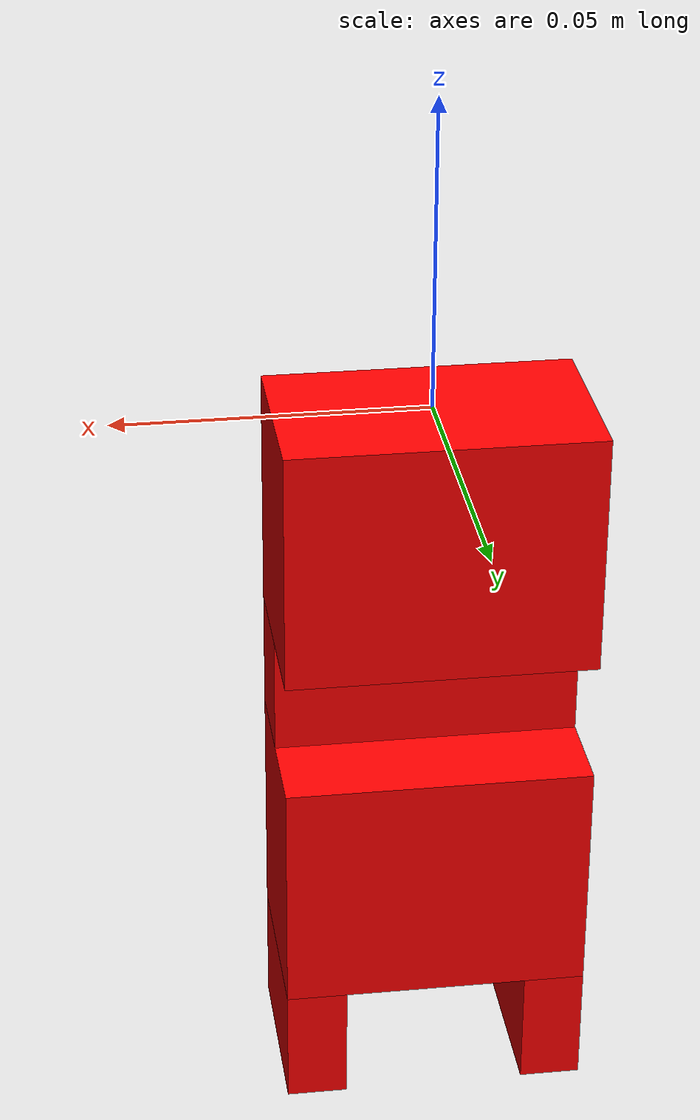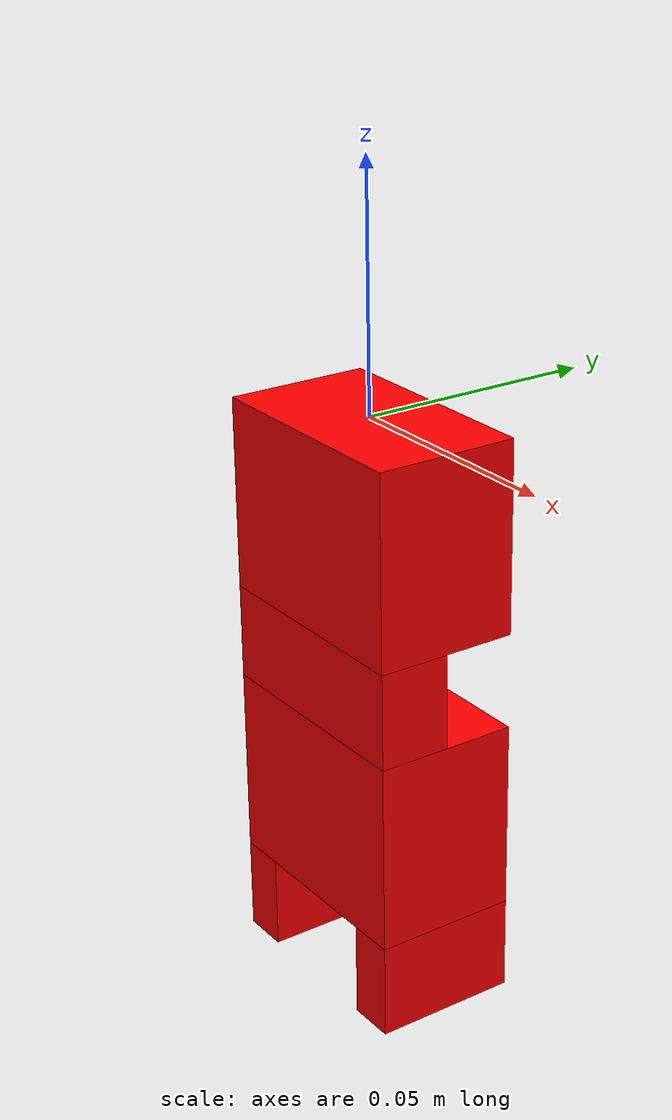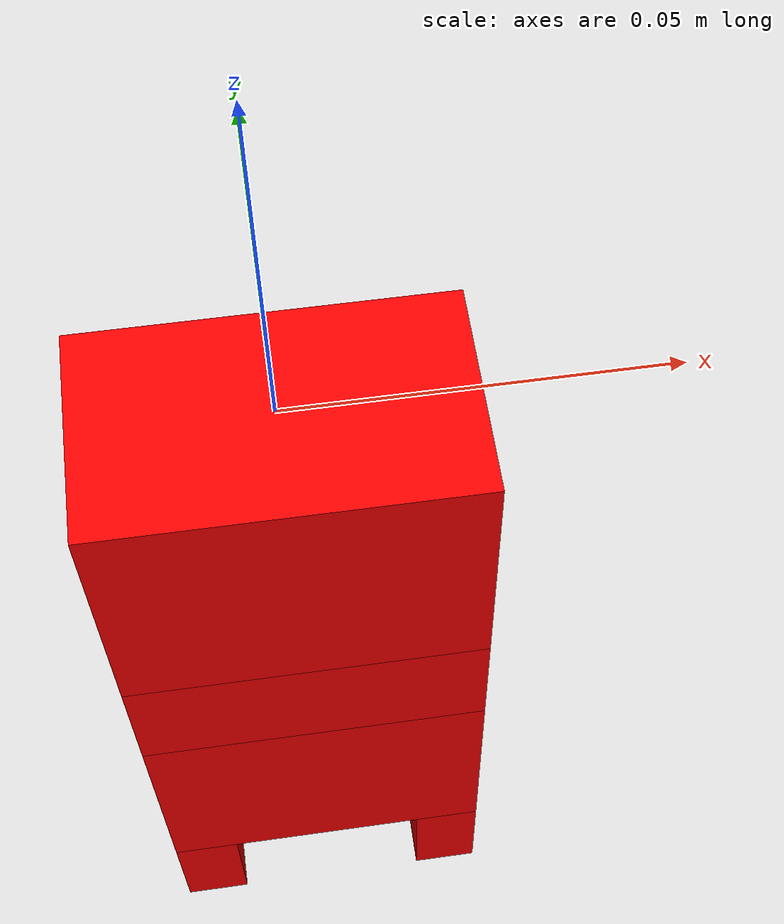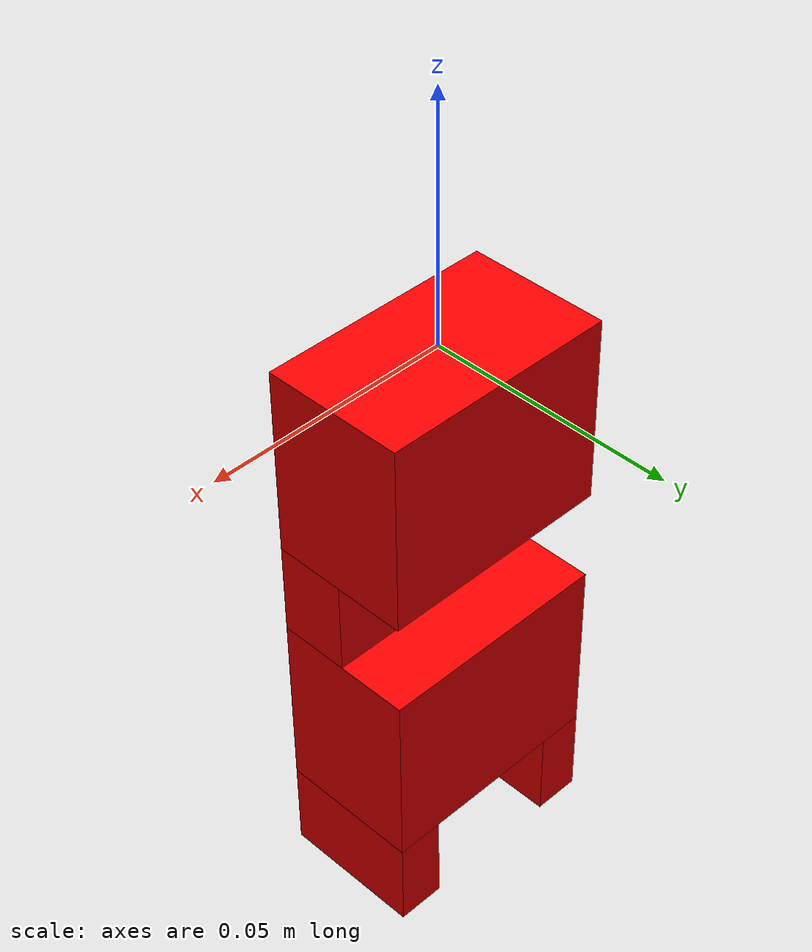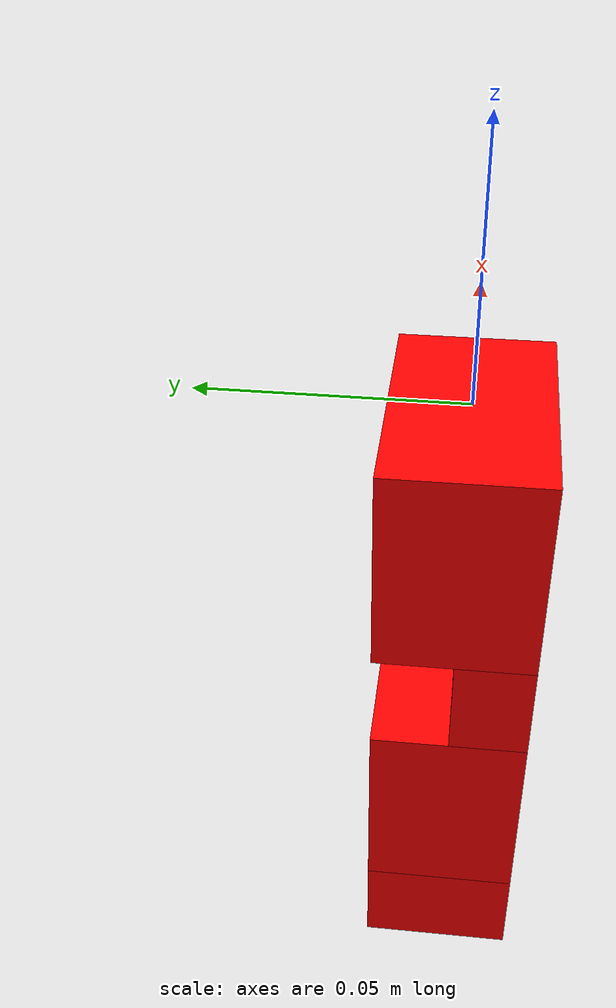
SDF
<?xml version="1.0"?>
<sdf version="1.7">
<world name="w">
<model name="moving_puzzle">
<link name="base_link">
	<inertial>
		<pose>0 -0.00076531 -0.054898 0 0 0</pose>
<mass>1</mass>
		<inertia>
<ixx>0.001194</ixx>
<ixy>0</ixy>
<ixz>0</ixz>
<iyy>0.0013442</iyy>
<iyz>3.7484e-06</iyz>
<izz>0.00029907</izz>
</inertia>
        </inertial>
	<visual name="b1">
		<pose>0.0 0.0 -0.02 0.0 0.0 0.0</pose>
		<geometry>
			<box><size>0.05 0.03 0.04</size></box>
                </geometry>
                <material>
                    <diffuse>1 0 0 1</diffuse>
                </material>
	</visual>
	<collision name="b1">
		<pose>0.0 0.0 -0.02 0.0 0.0 0.0</pose>
		<geometry>
			<box><size>0.05 0.03 0.04</size></box>
		</geometry>
		<drake:proximity_properties>
			<drake:mu_static>0.0</drake:mu_static>
                        <drake:mu_dynamic>0.0</drake:mu_dynamic>
                        <drake:compliant_hydroelastic/>
                        <drake:mesh_resolution_hint>0.0001</drake:mesh_resolution_hint>
                        <drake:hunt_crossley_dissipation>0.50</drake:hunt_crossley_dissipation>
                        <drake:hydroelastic_modulus>90000000</drake:hydroelastic_modulus>
                        <drake:relaxation_time>0.0001</drake:relaxation_time>
		</drake:proximity_properties>
	</collision>
	<visual name="b2">
		<pose>0.0 -0.0075 -0.05 0.0 0.0 0.0</pose>
		<geometry>
			<box><size>0.05 0.015 0.02</size></box>
                </geometry>
                <material>
                    <diffuse>1 0 0 1</diffuse>
                </material>
	</visual>
	<collision name="b2">
		<pose>0.0 -0.0075 -0.05 0.0 0.0 0.0</pose>
		<geometry>
			<box><size>0.05 0.015 0.02</size></box>
		</geometry>
		<drake:proximity_properties>
			<drake:mu_static>0.0</drake:mu_static>
                        <drake:mu_dynamic>0.0</drake:mu_dynamic>
                        <drake:compliant_hydroelastic/>
                        <drake:mesh_resolution_hint>0.0001</drake:mesh_resolution_hint>
                        <drake:hunt_crossley_dissipation>0.50</drake:hunt_crossley_dissipation>
                        <drake:hydroelastic_modulus>90000000</drake:hydroelastic_modulus>
                        <drake:relaxation_time>0.0001</drake:relaxation_time>
		</drake:proximity_properties>
        </collision>
	<visual name="b3">
		<pose>0.0 0.0 -0.08 0.0 0.0 0.0</pose>
		<geometry>
			<box><size>0.05 0.03 0.04</size></box>
                </geometry>
                <material>
                    <diffuse>1 0 0 1</diffuse>
                </material>
	</visual>
	<collision name="b3">
		<pose>0.0 0.0 -0.08 0.0 0.0 0.0</pose>
		<geometry>
			<box><size>0.05 0.03 0.04</size></box>
		</geometry>
		<drake:proximity_properties>
			<drake:mu_static>0.0</drake:mu_static>
                        <drake:mu_dynamic>0.0</drake:mu_dynamic>
                        <drake:compliant_hydroelastic/>
                        <drake:mesh_resolution_hint>0.0001</drake:mesh_resolution_hint>
                        <drake:hunt_crossley_dissipation>0.50</drake:hunt_crossley_dissipation>
                        <drake:hydroelastic_modulus>90000000</drake:hydroelastic_modulus>
                        <drake:relaxation_time>0.0001</drake:relaxation_time>
		</drake:proximity_properties>
	</collision>
	<visual name="b4">
		<pose>0.02 0.0 -0.11 0.0 0.0 0.0</pose>
		<geometry>
			<box><size>0.01 0.03 0.02</size></box>
                </geometry>
                <material>
                    <diffuse>1 0 0 1</diffuse>
                </material>
       	</visual>
	<collision name="b4">
		<pose>0.02 0.0 -0.11 0.0 0.0 0.0</pose>
		<geometry>
			<box><size>0.01 0.03 0.02</size></box>
		</geometry>
		<drake:proximity_properties>
			<drake:mu_static>0.0</drake:mu_static>
			<drake:mu_dynamic>0.0</drake:mu_dynamic>
                        <drake:compliant_hydroelastic/>
                        <drake:mesh_resolution_hint>0.0001</drake:mesh_resolution_hint>
                        <drake:hunt_crossley_dissipation>0.50</drake:hunt_crossley_dissipation>
                        <drake:hydroelastic_modulus>90000000</drake:hydroelastic_modulus>
                        <drake:relaxation_time>0.0001</drake:relaxation_time>
		</drake:proximity_properties>
	</collision>
	<visual name="b5">
		<pose>-0.02 0.0 -0.11 0.0 0.0 0.0</pose>
		<geometry>
			<box><size>0.01 0.03 0.02</size></box>
                </geometry>
                <material>
                    <diffuse>1 0 0 1</diffuse>
                </material>
       	</visual>
	<collision name="b5">
		<pose>-0.02 0.0 -0.11 0.0 0.0 0.0</pose>
		<geometry>
			<box><size>0.01 0.03 0.02</size></box>
		</geometry>
		<drake:proximity_properties>
			<drake:mu_static>0.0</drake:mu_static>
                        <drake:mu_dynamic>0.0</drake:mu_dynamic>
                        <drake:compliant_hydroelastic/>
                        <drake:mesh_resolution_hint>0.0001</drake:mesh_resolution_hint>
                        <drake:hunt_crossley_dissipation>0.50</drake:hunt_crossley_dissipation>
                        <drake:hydroelastic_modulus>90000000</drake:hydroelastic_modulus>
                        <drake:relaxation_time>0.0001</drake:relaxation_time>
		</drake:proximity_properties>
	</collision>
</link>
</model>
</world>
</sdf>
